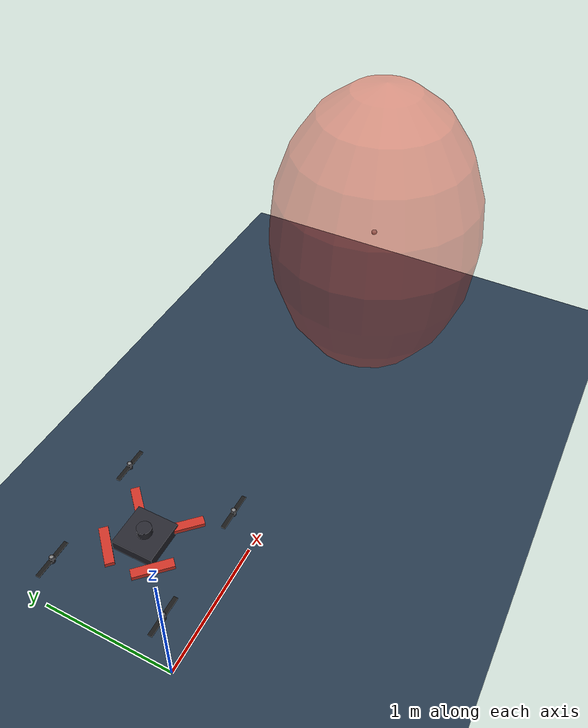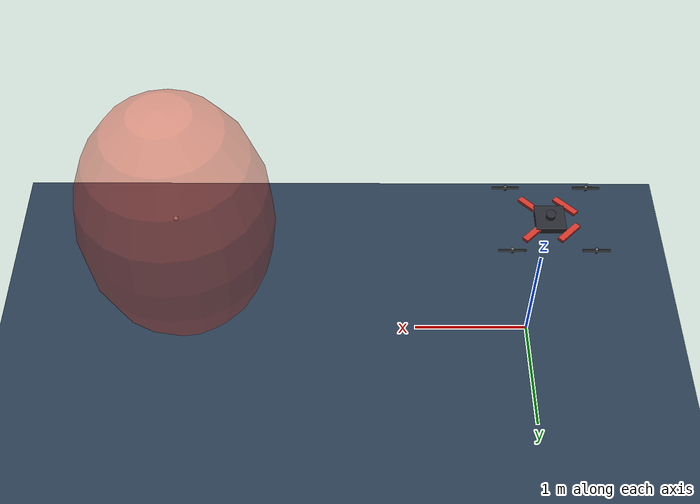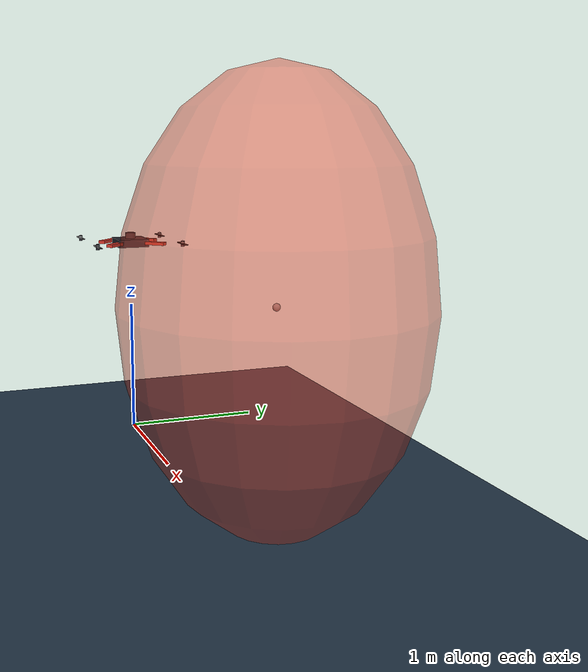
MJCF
<mujoco model="quadrotor_nmpc">
  <compiler angle="radian" coordinate="local" inertiafromgeom="true"/>
  <option gravity="0 0 -9.81" timestep="0.002" integrator="RK4"/>

  <visual>
    <headlight diffuse="0.6 0.6 0.6" ambient="0.3 0.3 0.3" specular="0 0 0"/>
    <rgba haze="0.15 0.25 0.35 1"/>
    <global azim="135" elevation="-20"/>
  </visual>

  <asset>
    <texture type="skybox" builtin="gradient" rgb1="0.3 0.5 0.7" rgb2="0 0 0"
             width="512" height="512"/>
    <texture type="2d" name="ground_tex" builtin="checker" mark="edge"
             rgb1="0.2 0.3 0.4" rgb2="0.1 0.15 0.2" width="512" height="512"/>
    <material name="ground_mat" texture="ground_tex" texrepeat="8 8"
              reflectance="0.2"/>
    <material name="frame_mat" rgba="0.15 0.15 0.18 1" specular="0.6" shininess="0.4"/>
    <material name="arm_mat" rgba="0.8 0.2 0.15 1" specular="0.5" shininess="0.3"/>
    <material name="prop_mat" rgba="0.1 0.1 0.1 0.9" specular="0.2"/>
    <material name="obs_mat" rgba="0.9 0.25 0.15 0.45" specular="0.1"/>
    <material name="thrust_mat" rgba="0.3 0.8 1.0 0.5" emission="0.2"/>
  </asset>

  <worldbody>
    <light diffuse="0.6 0.6 0.6" pos="0 0 6" dir="0 0 -1"/>
    <geom name="ground" type="plane" size="20 20 0.1" material="ground_mat"/>
    <!-- Ellipsoidal obstacle matching nmpc_tuning.yaml (center + radii). -->
    <body name="obstacle" pos="3.0 0.0 1.5">
      <freejoint/>
      <geom name="obstacle_geom" type="ellipsoid" size="0.8 0.8 1.2"
            material="obs_mat" contype="0" conaffinity="0"/>
      <site name="obstacle_center" pos="0 0 0" size="0.02"/>
    </body>

    <!-- Quadrotor airframe: free root + X4 arms, motors, props, thrust sites. -->
    <body name="quadrotor" pos="0 0 1.5">
      <freejoint name="root"/>
      <!-- Central frame -->
      <geom name="frame" type="box" size="0.12 0.12 0.03" mass="0.6"
            material="frame_mat"/>
      <geom name="fc_stack" type="cylinder" size="0.04 0.03" pos="0 0 0.045"
            mass="0.1" material="frame_mat"/>
      <!-- Arms (X configuration, 45 deg), motors, propellers -->
      <body name="arm_fl" pos="0.14 0.14 0">
        <geom name="arm_fl_geom" type="box" size="0.11 0.025 0.012" mass="0.05"
              quat="0.9239 0 0 0.3827" material="arm_mat"/>
        <body name="motor_fl" pos="0.19 0.19 0.01">
          <geom name="motor_fl_geom" type="cylinder" size="0.014 0.02" mass="0.03"
                material="frame_mat"/>
          <joint name="rotor_fl" type="hinge" axis="0 0 1" damping="0.0001"/>
          <geom name="prop_fl" type="box" size="0.11 0.012 0.003" mass="0.01"
                material="prop_mat"/>
          <site name="thrust_fl" pos="0 0 0.01" size="0.015"/>
        </body>
      </body>
      <body name="arm_fr" pos="0.14 -0.14 0">
        <geom name="arm_fr_geom" type="box" size="0.11 0.025 0.012" mass="0.05"
              quat="0.9239 0 0 -0.3827" material="arm_mat"/>
        <body name="motor_fr" pos="0.19 -0.19 0.01">
          <geom name="motor_fr_geom" type="cylinder" size="0.014 0.02" mass="0.03"
                material="frame_mat"/>
          <joint name="rotor_fr" type="hinge" axis="0 0 1" damping="0.0001"/>
          <geom name="prop_fr" type="box" size="0.11 0.012 0.003" mass="0.01"
                material="prop_mat"/>
          <site name="thrust_fr" pos="0 0 0.01" size="0.015"/>
        </body>
      </body>
      <body name="arm_rl" pos="-0.14 0.14 0">
        <geom name="arm_rl_geom" type="box" size="0.11 0.025 0.012" mass="0.05"
              quat="0.9239 0 0 0.3827" material="arm_mat"/>
        <body name="motor_rl" pos="-0.19 0.19 0.01">
          <geom name="motor_rl_geom" type="cylinder" size="0.014 0.02" mass="0.03"
                material="frame_mat"/>
          <joint name="rotor_rl" type="hinge" axis="0 0 1" damping="0.0001"/>
          <geom name="prop_rl" type="box" size="0.11 0.012 0.003" mass="0.01"
                material="prop_mat"/>
          <site name="thrust_rl" pos="0 0 0.01" size="0.015"/>
        </body>
      </body>
      <body name="arm_rr" pos="-0.14 -0.14 0">
        <geom name="arm_rr_geom" type="box" size="0.11 0.025 0.012" mass="0.05"
              quat="0.9239 0 0 -0.3827" material="arm_mat"/>
        <body name="motor_rr" pos="-0.19 -0.19 0.01">
          <geom name="motor_rr_geom" type="cylinder" size="0.014 0.02" mass="0.03"
                material="frame_mat"/>
          <joint name="rotor_rr" type="hinge" axis="0 0 1" damping="0.0001"/>
          <geom name="prop_rr" type="box" size="0.11 0.012 0.003" mass="0.01"
                material="prop_mat"/>
          <site name="thrust_rr" pos="0 0 0.01" size="0.015"/>
        </body>
      </body>
      <!-- Body-frame IMU + thrust visualization sites -->
      <site name="imu" pos="0 0 0.02" size="0.01"/>
      <site name="thrust_total" pos="0 0 0.05" size="0.02"/>
    </body>
  </worldbody>

  <!-- 4 rotor thrust actuators (mapped from [fT, taux, tauy, tauz] by the
       bridge allocation matrix) + obstacle marker. -->
  <actuator>
    <motor name="thrust_fl_m" joint="rotor_fl" gear="1" ctrlrange="0 6"/>
    <motor name="thrust_fr_m" joint="rotor_fr" gear="1" ctrlrange="0 6"/>
    <motor name="thrust_rl_m" joint="rotor_rl" gear="1" ctrlrange="0 6"/>
    <motor name="thrust_rr_m" joint="rotor_rr" gear="1" ctrlrange="0 6"/>
  </actuator>

  <keyframe>
    <key name="hover" qpos="0 0 1.5 1 0 0 0  0 0 0 0" qvel="0 0 0 0 0 0 0 0 0 0 0"/>
  </keyframe>
</mujoco>
